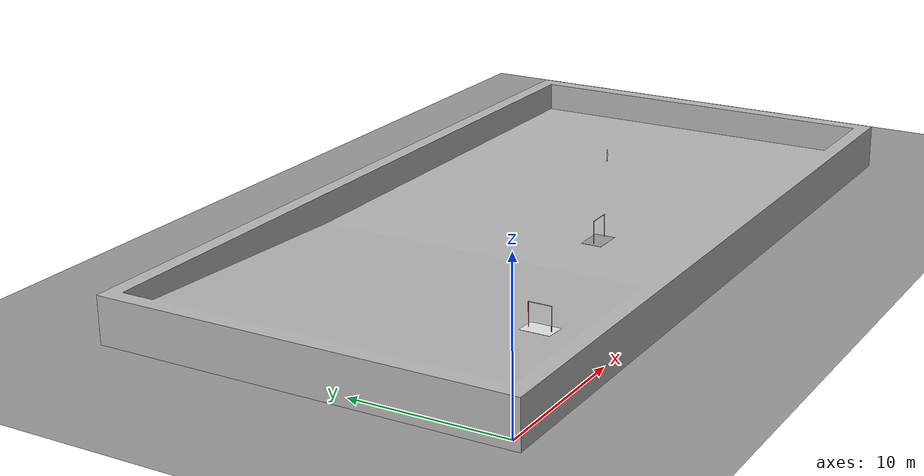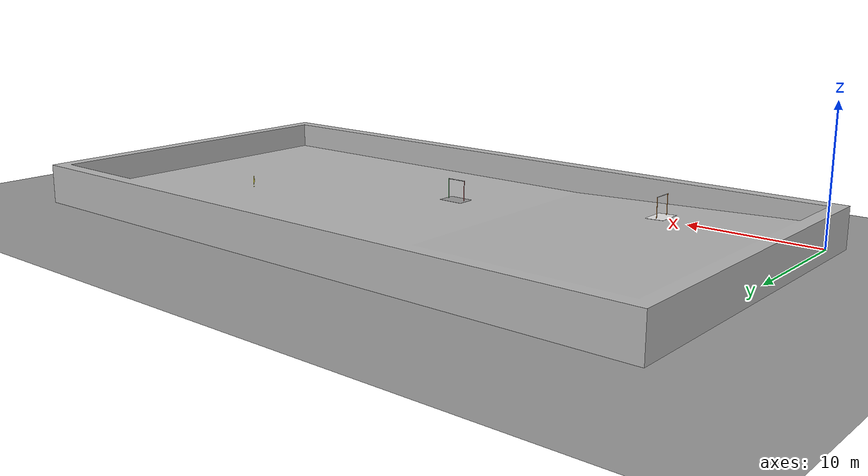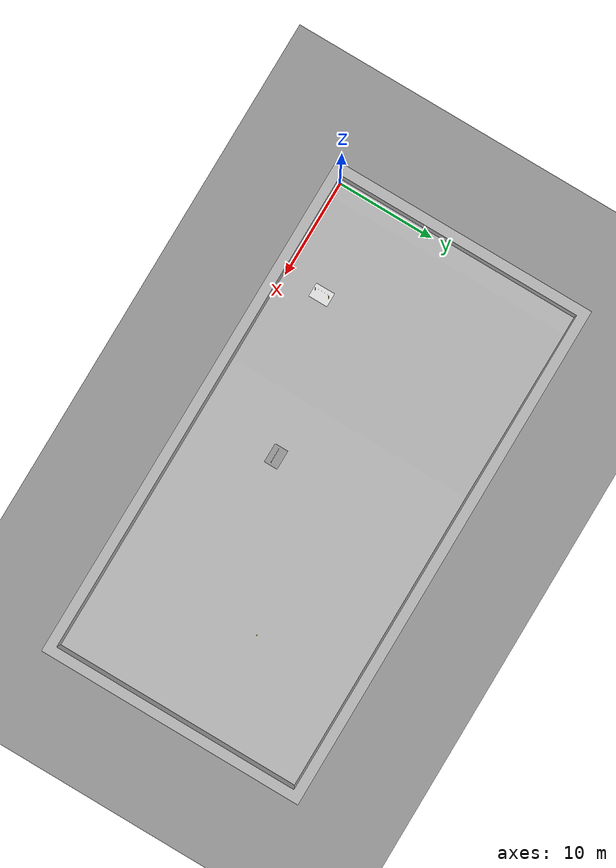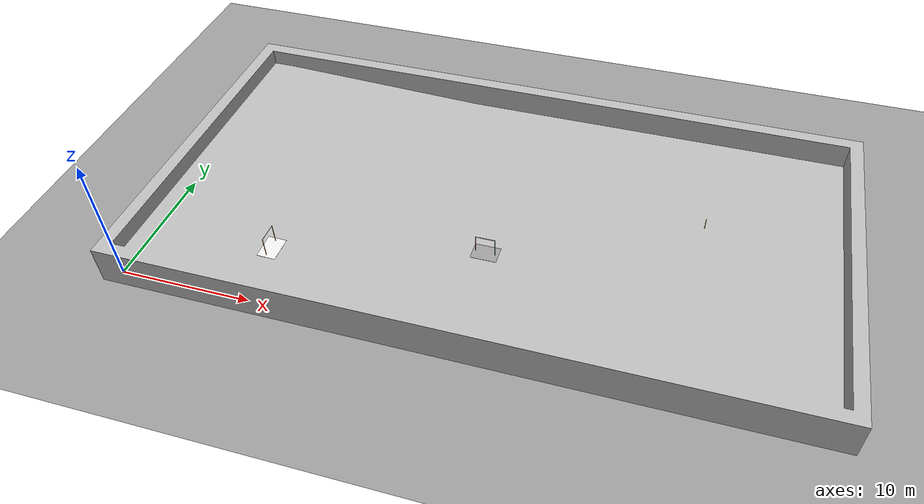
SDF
<sdf version="1.6">
 <world name="water">
  <gravity>0 0 -9.8</gravity>
  <magnetic_field>6e-06 2.3e-05 -4.2e-05</magnetic_field>
  <atmosphere type="adiabatic"/>
  <physics name="default_physics" default="0" type="ode">
   <max_step_size>0.001</max_step_size>
   <real_time_factor>1</real_time_factor>
   <real_time_update_rate>1000</real_time_update_rate>
  </physics>
  <scene>
   <ambient>110 130 150 255</ambient>
   <sky><clouds><speed>12</speed></clouds></sky>
   <shadows>1</shadows>
   <background>0.7 0.7 0.7 1</background>
  </scene>
  <light name="sun1" type="directional">
   <pose>25 12.5 50 0 -0 0</pose>
   <diffuse>1 1 1 1</diffuse>
   <specular>0.1 0.1 0.1 1</specular>
   <direction>0.3 0.3 -1</direction>
   <cast_shadows>0</cast_shadows>
  </light>
  <light name="sun_diffuse" type="directional">
   <pose>25 12.5 1.8 0 -0 0</pose>
   <diffuse>0.6 0.6 0.6 1</diffuse>
   <specular>0 0 0 1</specular>
   <direction>-0.3 -0.3 -1</direction>
   <cast_shadows>0</cast_shadows>
  </light>
  <model name="world_ned">
   <static>1</static>
   <link name="world_ned">
    <gravity>0</gravity>
    <pose>0 0 0 -3.14159 -0 1.5708</pose>
    <visual name="N_visual">
     <pose>0.25 0 0 1.5708 -0 1.5708</pose>
     <geometry><cylinder><radius>0.01</radius><length>0.5</length></cylinder></geometry>
     <material>
      <script><uri>file://media/materials/scripts/gazebo.material</uri><name>Gazebo/Red</name></script>
     </material>
    </visual>
    <visual name="E_visual">
     <pose>0 0.25 0 1.5708 -0 0</pose>
     <geometry><cylinder><radius>0.01</radius><length>0.5</length></cylinder></geometry>
     <material>
      <script><uri>file://media/materials/scripts/gazebo.material</uri><name>Gazebo/Green</name></script>
     </material>
    </visual>
    <visual name="D_visual">
     <pose>0 0 0.25 0 -0 0</pose>
     <geometry><cylinder><radius>0.01</radius><length>0.5</length></cylinder></geometry>
     <material>
      <script><uri>file://media/materials/scripts/gazebo.material</uri><name>Gazebo/Blue</name></script>
     </material>
    </visual>
   </link>
  </model>
  <model name="ground_plane_0">
   <static>1</static>
   <link name="link">
    <collision name="collision">
     <geometry><plane><normal>0 0 1</normal><size>200 200</size></plane></geometry>
     <surface><friction><ode><mu>100</mu><mu2>50</mu2></ode></friction></surface>
    </collision>
    <visual name="visual">
     <cast_shadows>0</cast_shadows>
     <geometry><plane><normal>0 0 1</normal><size>200 200</size></plane></geometry>
     <material>
      <script><uri>file://media/materials/scripts/gazebo.material</uri><name>Gazebo/Grey</name></script>
     </material>
    </visual>
    <velocity_decay><linear>0</linear><angular>0</angular></velocity_decay>
   </link>
   <pose>0.497681 0 0 0 -0 0</pose>
  </model>
  <model name="pool">
   <link name="Base_link">
    <inertial>
     <pose>-0 0 0.75567 0 -0 0</pose>
     <mass>1.2379e+07</mass>
     <inertia>
      <ixx>9.3556e+08</ixx>
      <ixy>-5.1e-07</ixy>
      <ixz>2.8051e-08</ixz>
      <iyy>3.1435e+09</iyy>
      <iyz>6.3008e-08</iyz>
      <izz>4.0668e+09</izz>
     </inertia>
    </inertial>
    <collision name="Base_link_collision">
     <geometry>
      <mesh>
       <scale>1 1 1</scale>
       <uri>/home/pavel/AUV/AUV/simple_simulation/src/pool/meshes/pool_final.DAE</uri>
      </mesh>
     </geometry>
    </collision>
    <visual name="Base_link_visual">
     <geometry>
      <mesh>
       <scale>1 1 1</scale>
       <uri>/home/pavel/AUV/AUV/simple_simulation/src/pool/meshes/pool_final.DAE</uri>
      </mesh>
     </geometry>
    </visual>
   </link>
   <pose>25 12.5 -3.3e-05 0 -0 0</pose>
  </model>
  <model name="flare">
   <link name="base_link">
    <inertial>
     <mass>250</mass>
     <inertia>
      <ixx>2.70025</ixx>
      <ixy>-0.00065535</ixy>
      <ixz>-0.00028377</ixz>
      <iyy>2.00731</iyy>
      <iyz>-0.0082089</iyz>
      <izz>2.69672</izz>
     </inertia>
    </inertial>
    <collision name="base_link_collision">
     <geometry>
      <mesh>
       <scale>1 1 1</scale>
       <uri>/home/pavel/AUV/AUV/simple_simulation/src/flare/meshes/base_link.STL</uri>
      </mesh>
     </geometry>
    </collision>
    <visual name="base_link_visual">
     <geometry>
      <mesh>
       <scale>1 1 1</scale>
       <uri>/home/pavel/AUV/AUV/simple_simulation/src/flare/meshes/base_link.STL</uri>
      </mesh>
     </geometry>
     <material>
      <script><name>Gazebo/Yellow</name><uri>file://media/materials/scripts/gazebo.material</uri></script>
     </material>
    </visual>
   </link>
   <pose>40.0001 15.0001 0.999619 -1e-06 -1e-06 -2.8e-05</pose>
  </model>
  <model name="gates_qualification">
   <link name="Base_parent_link">
    <inertial>
     <pose>-0.005114 0.043791 0.166619 0 -0 0</pose>
     <mass>259.214</mass>
     <inertia>
      <ixx>84.2945</ixx>
      <ixy>0.0120116</ixy>
      <ixz>-0.230412</ixz>
      <iyy>136.398</iyy>
      <iyz>3.40993</iyz>
      <izz>122.058</izz>
     </inertia>
    </inertial>
    <collision name="Base_parent_link_collision">
     <geometry>
      <mesh>
       <scale>1 1 1</scale>
       <uri>/home/pavel/AUV/AUV/simple_simulation/src/gates_qualification/meshes/Base_parent_link.STL</uri>
      </mesh>
     </geometry>
    </collision>
    <collision name="Base_parent_link_fixed_joint_lump__Left_link_collision_1">
     <pose>0 0 0 1.5708 -0 0</pose>
     <geometry>
      <mesh>
       <scale>1 1 1</scale>
       <uri>/home/pavel/AUV/AUV/simple_simulation/src/gates_qualification/meshes/Left_link.STL</uri>
      </mesh>
     </geometry>
    </collision>
    <collision name="Base_parent_link_fixed_joint_lump__Right_link_collision_2">
     <pose>0 0 0 1.5708 -0 0</pose>
     <geometry>
      <mesh>
       <scale>1 1 1</scale>
       <uri>/home/pavel/AUV/AUV/simple_simulation/src/gates_qualification/meshes/Right_link.STL</uri>
      </mesh>
     </geometry>
    </collision>
    <visual name="Base_parent_link_visual">
     <geometry>
      <mesh>
       <scale>1 1 1</scale>
       <uri>/home/pavel/AUV/AUV/simple_simulation/src/gates_qualification/meshes/Base_parent_link.STL</uri>
      </mesh>
     </geometry>
     <material>
      <script><name>Gazebo/White</name><uri>file://media/materials/scripts/gazebo.material</uri></script>
     </material>
    </visual>
    <visual name="Base_parent_link_fixed_joint_lump__Left_link_visual_1">
     <pose>0 0 0 1.5708 -0 0</pose>
     <geometry>
      <mesh>
       <scale>1 1 1</scale>
       <uri>/home/pavel/AUV/AUV/simple_simulation/src/gates_qualification/meshes/Left_link.STL</uri>
      </mesh>
     </geometry>
     <material>
      <script><name>Gazebo/Orange</name><uri>file://media/materials/scripts/gazebo.material</uri></script>
     </material>
    </visual>
    <visual name="Base_parent_link_fixed_joint_lump__Right_link_visual_2">
     <pose>0 0 0 1.5708 -0 0</pose>
     <geometry>
      <mesh>
       <scale>1 1 1</scale>
       <uri>/home/pavel/AUV/AUV/simple_simulation/src/gates_qualification/meshes/Right_link.STL</uri>
      </mesh>
     </geometry>
     <material>
      <script><name>Gazebo/Orange</name><uri>file://media/materials/scripts/gazebo.material</uri></script>
     </material>
    </visual>
   </link>
   <pose>10.0001 4 1.39261 7e-05 -0 -1.5708</pose>
  </model>
  <model name="gates_final">
   <link name="Base_parent_link">
    <inertial>
     <pose>-0.005114 0.043999 0.168428 0 -0 0</pose>
     <mass>259.211</mass>
     <inertia>
      <ixx>84.1328</ixx>
      <ixy>0.0120685</ixy>
      <ixz>-0.229913</ixz>
      <iyy>136.173</iyy>
      <iyz>1.97802</iyz>
      <izz>122.116</izz>
     </inertia>
    </inertial>
    <collision name="Base_parent_link_collision">
     <geometry>
      <mesh>
       <scale>1 1 1</scale>
       <uri>/home/pavel/AUV/AUV/simple_simulation/src/gates_final/meshes/Base_parent_link.STL</uri>
      </mesh>
     </geometry>
    </collision>
    <collision name="Base_parent_link_fixed_joint_lump__Left_link_collision_1">
     <pose>0 0 0 1.5708 -0 0</pose>
     <geometry>
      <mesh>
       <scale>1 1 1</scale>
       <uri>/home/pavel/AUV/AUV/simple_simulation/src/gates_final/meshes/Left_link.STL</uri>
      </mesh>
     </geometry>
    </collision>
    <collision name="Base_parent_link_fixed_joint_lump__Right_link_collision_2">
     <pose>0 0 0 1.5708 -0 0</pose>
     <geometry>
      <mesh>
       <scale>1 1 1</scale>
       <uri>/home/pavel/AUV/AUV/simple_simulation/src/gates_final/meshes/Right_link.STL</uri>
      </mesh>
     </geometry>
    </collision>
    <visual name="Base_parent_link_visual">
     <geometry>
      <mesh>
       <scale>1 1 1</scale>
       <uri>/home/pavel/AUV/AUV/simple_simulation/src/gates_final/meshes/Base_parent_link.STL</uri>
      </mesh>
     </geometry>
     <material>
      <script><name>Gazebo/Grey</name><uri>file://media/materials/scripts/gazebo.material</uri></script>
     </material>
    </visual>
    <visual name="Base_parent_link_fixed_joint_lump__Left_link_visual_1">
     <pose>0 0 0 1.5708 -0 0</pose>
     <geometry>
      <mesh>
       <scale>1 1 1</scale>
       <uri>/home/pavel/AUV/AUV/simple_simulation/src/gates_final/meshes/Left_link.STL</uri>
      </mesh>
     </geometry>
     <material>
      <script><name>Gazebo/Red</name><uri>file://media/materials/scripts/gazebo.material</uri></script>
     </material>
    </visual>
    <visual name="Base_parent_link_fixed_joint_lump__Right_link_visual_2">
     <pose>0 0 0 1.5708 -0 0</pose>
     <geometry>
      <mesh>
       <scale>1 1 1</scale>
       <uri>/home/pavel/AUV/AUV/simple_simulation/src/gates_final/meshes/Right_link.STL</uri>
      </mesh>
     </geometry>
     <material>
      <script><name>Gazebo/Green</name><uri>file://media/materials/scripts/gazebo.material</uri></script>
     </material>
    </visual>
   </link>
   <pose>25 7.99995 1.00998 0 -0 0</pose>
  </model>
 </world>
</sdf>
